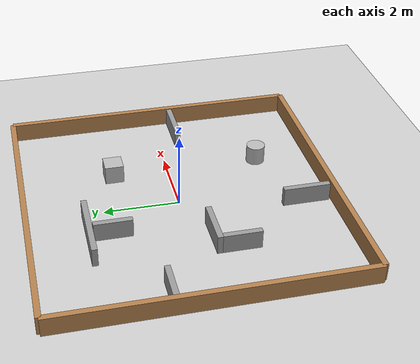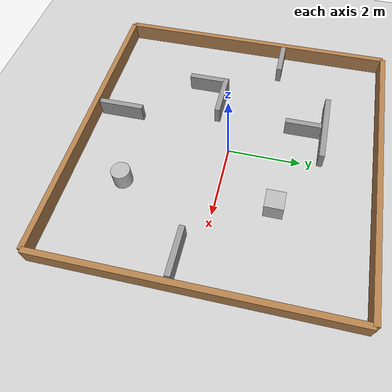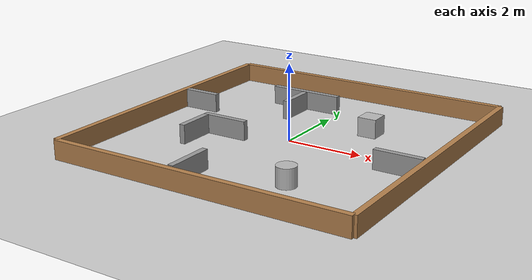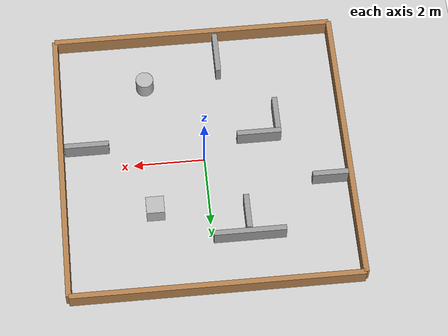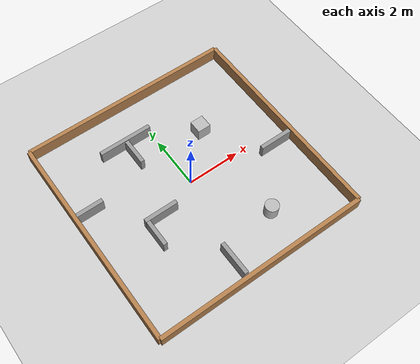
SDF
<?xml version='1.0'?>
<sdf version='1.6'>
  <world name="default">
    <!-- A global light source -->
    <include>
      <uri>model://sun</uri>
    </include>

    <!-- Ground plane -->
    <include>
      <uri>model://ground_plane</uri>
    </include>

    <physics type='ode'>
      <real_time_update_rate>5000.0</real_time_update_rate>
      <max_step_size>0.001</max_step_size>
      <real_time_factor>1</real_time_factor>
      <ode>
        <solver>
          <type>quick</type>
          <iters>150</iters>
          <precon_iters>0</precon_iters>
          <sor>1.4</sor>
          <use_dynamic_moi_rescaling>1</use_dynamic_moi_rescaling>
        </solver>
        <constraints>
          <cfm>1e-05</cfm>
          <erp>0.2</erp>
          <contact_max_correcting_vel>2000</contact_max_correcting_vel>
          <contact_surface_layer>0.01</contact_surface_layer>
        </constraints>
      </ode>
    </physics>

    <!-- Rectangle Walls: Wall 1-4 -->
    <model name='rect_wall'>
      <pose frame=''>0 0 0 0 -0 0</pose>
      <link name='Wall_1'>
        <collision name='Wall_0_Collision'>
          <geometry>
            <box>
              <size>8 0.15 0.5</size>
            </box>
          </geometry>
          <pose frame=''>0 0 0.25 0 -0 0</pose>
        </collision>
        <visual name='Wall_0_Visual'>
          <pose frame=''>0 0 0.25 0 -0 0</pose>
          <geometry>
            <box>
              <size>8 0.15 0.5</size>
            </box>
          </geometry>
          <material>
            <script>
              <uri>file://media/materials/scripts/gazebo.material</uri>
              <name>Gazebo/Wood</name>
            </script>
            <ambient>1 1 1 1</ambient>
          </material>
        </visual>
        <pose frame=''>0 4.0 0 0 -0 0</pose>
      </link>
      <link name='Wall_2'>
        <collision name='Wall_2_Collision'>
          <geometry>
            <box>
              <size>8 0.15 0.5</size>
            </box>
          </geometry>
          <pose frame=''>0 0 0.25 0 -0 0</pose>
        </collision>
        <visual name='Wall_2_Visual'>
          <pose frame=''>0 0 0.25 0 -0 0</pose>
          <geometry>
            <box>
              <size>8 0.15 0.5</size>
            </box>
          </geometry>
          <material>
            <script>
              <uri>file://media/materials/scripts/gazebo.material</uri>
              <name>Gazebo/Wood</name>
            </script>
            <ambient>1 1 1 1</ambient>
          </material>
        </visual>
        <pose frame=''>-4.0 0 0 0 0 -1.5708</pose>
      </link>
      <link name='Wall_3'>
        <collision name='Wall_3_Collision'>
          <geometry>
            <box>
              <size>8 0.15 0.5</size>
            </box>
          </geometry>
          <pose frame=''>0 0 0.25 0 -0 0</pose>
        </collision>
        <visual name='Wall_3_Visual'>
          <pose frame=''>0 0 0.25 0 -0 0</pose>
          <geometry>
            <box>
              <size>8 0.15 0.5</size>
            </box>
          </geometry>
          <material>
            <script>
              <uri>file://media/materials/scripts/gazebo.material</uri>
              <name>Gazebo/Wood</name>
            </script>
            <ambient>1 1 1 1</ambient>
          </material>
        </visual>
        <pose frame=''>0 -4.0 0 0 -0 0</pose>
      </link>
      <link name='Wall_4'>
        <collision name='Wall_4_Collision'>
          <geometry>
            <box>
              <size>8 0.15 0.5</size>
            </box>
          </geometry>
          <pose frame=''>0 0 0.25 0 -0 0</pose>
        </collision>
        <visual name='Wall_4_Visual'>
          <pose frame=''>0 0 0.25 0 -0 0</pose>
          <geometry>
            <box>
              <size>8 0.15 0.5</size>
            </box>
          </geometry>
          <material>
            <script>
              <uri>file://media/materials/scripts/gazebo.material</uri>
              <name>Gazebo/Wood</name>
            </script>
            <ambient>1 1 1 1</ambient>
          </material>
        </visual>
        <pose frame=''>4.0 0 0 0 -0 1.5708</pose>
      </link>
      <static>1</static>
    </model>

    <!-- Maze walls: maze 1-7 -->
    <model name='Test2'>
      <pose>-0.13 -0.5 0 0 -0 0</pose>

      <link name='Maze_1'>
        <collision name='Maze_1_Collision'>
          <geometry>
            <box>
              <size>2 0.15 0.5</size>
            </box>
          </geometry>
          <pose>0 0 0.25 0 -0 0</pose>
        </collision>
        <visual name='Maze_1_Visual'>
          <pose>0 0 0.25 0 -0 0</pose>
          <geometry>
            <box>
              <size>2 0.15 0.5</size>
            </box>
          </geometry>
          <material>
            <script>
              <uri>file://media/materials/scripts/gazebo.material</uri>
              <name>Gazebo/Grey</name>
            </script>
            <ambient>1 1 1 1</ambient>
          </material>
          <meta>
            <layer>0</layer>
          </meta>
        </visual>
        <pose>-0.895 3 0 0 -0 0</pose>
      </link>
      <link name='Maze_2'>
        <collision name='Maze_2_Collision'>
          <geometry>
            <box>
              <size>1 0.15 0.5</size>
            </box>
          </geometry>
          <pose>0 0 0.25 0 -0 0</pose>
        </collision>
        <visual name='Maze_2_Visual'>
          <pose>0 0 0.25 0 -0 0</pose>
          <geometry>
            <box>
              <size>1 0.15 0.5</size>
            </box>
          </geometry>
          <material>
            <script>
              <uri>file://media/materials/scripts/gazebo.material</uri>
              <name>Gazebo/Grey</name>
            </script>
            <ambient>1 1 1 1</ambient>
          </material>
          <meta>
            <layer>0</layer>
          </meta>
        </visual>
        <pose>-0.89 2.405 0 0 -0 -1.5708</pose>
      </link>
      <link name='Maze_3'>
        <collision name='Maze_3_Collision'>
          <geometry>
            <box>
              <size>1 0.15 0.5</size>
            </box>
          </geometry>
          <pose>0 0 0.25 0 -0 0</pose>
        </collision>
        <visual name='Maze_3_Visual'>
          <pose>0 0 0.25 0 -0 0</pose>
          <geometry>
            <box>
              <size>1 0.15 0.5</size>
            </box>
          </geometry>
          <material>
            <script>
              <uri>file://media/materials/scripts/gazebo.material</uri>
              <name>Gazebo/Grey</name>
            </script>
            <ambient>1 1 1 1</ambient>
          </material>
          <meta>
            <layer>0</layer>
          </meta>
        </visual>
        <pose>-3.30 1.44 0 0 -0 0</pose>
      </link>
      <link name='Maze_4'>
        <collision name='Maze_4_Collision'>
          <geometry>
            <box>
              <size>1.25 0.15 0.5</size>
            </box>
          </geometry>
          <pose>0 0 0.25 0 -0 0</pose>
        </collision>
        <visual name='Maze_4_Visual'>
          <pose>0 0 0.25 0 -0 0</pose>
          <geometry>
            <box>
              <size>1.25 0.15 0.5</size>
            </box>
          </geometry>
          <material>
            <script>
              <uri>file://media/materials/scripts/gazebo.material</uri>
              <name>Gazebo/Grey</name>
            </script>
            <ambient>1 1 1 1</ambient>
          </material>
          <meta>
            <layer>0</layer>
          </meta>
        </visual>
        <pose>-1.46 -0.03 0 0 -0 0</pose>
      </link>
      <link name='Maze_5'>
        <collision name='Maze_5_Collision'>
          <geometry>
            <box>
              <size>1 0.15 0.5</size>
            </box>
          </geometry>
          <pose>0 0 0.25 0 -0 0</pose>
        </collision>
        <visual name='Maze_5_Visual'>
          <pose>0 0 0.25 0 -0 0</pose>
          <geometry>
            <box>
              <size>1 0.15 0.5</size>
            </box>
          </geometry>
          <material>
            <script>
              <uri>file://media/materials/scripts/gazebo.material</uri>
              <name>Gazebo/Grey</name>
            </script>
            <ambient>1 1 1 1</ambient>
          </material>
          <meta>
            <layer>0</layer>
          </meta>
        </visual>
        <pose>-2.01 -0.595 0 0 -0 1.5708</pose>
      </link>
      <link name='Maze_6'>
        <collision name='Maze_6_Collision'>
          <geometry>
            <box>
              <size>1.25 0.15 0.5</size>
            </box>
          </geometry>
          <pose>0 0 0.25 0 -0 0</pose>
        </collision>
        <visual name='Maze_6_Visual'>
          <pose>0 0 0.25 0 -0 0</pose>
          <geometry>
            <box>
              <size>1.25 0.15 0.5</size>
            </box>
          </geometry>
          <material>
            <script>
              <uri>file://media/materials/scripts/gazebo.material</uri>
              <name>Gazebo/Grey</name>
            </script>
            <ambient>1 1 1 1</ambient>
          </material>
          <meta>
            <layer>0</layer>
          </meta>
        </visual>
        <pose>-0.51 -2.75 0 0 -0 1.5708</pose>
      </link>
      <link name='Maze_7'>
        <collision name='Maze_7_Collision'>
          <geometry>
            <box>
              <size>1.25 0.15 0.5</size>
            </box>
          </geometry>
          <pose>0 0 0.25 0 -0 0</pose>
        </collision>
        <visual name='Maze_7_Visual'>
          <pose>0 0 0.25 0 -0 0</pose>
          <geometry>
            <box>
              <size>1.25 0.15 0.5</size>
            </box>
          </geometry>
          <material>
            <script>
              <uri>file://media/materials/scripts/gazebo.material</uri>
              <name>Gazebo/Grey</name>
            </script>
            <ambient>1 1 1 1</ambient>
          </material>
          <meta>
            <layer>0</layer>
          </meta>
        </visual>
        <pose>3.4 -0.04 0 0 -0 0</pose>
      </link>
      <static>1</static>
    </model>
    <!-- Maze pillar: maze 8-10 -->
    <model name="other_maze">
      <pose>0 0 0.25 0 0 0</pose>
      <static>true</static>
      <link name="Maze_8">
        <pose>1.5 1.5 0 0 0 0</pose>
        <collision name="Maze_8_Collision">
          <geometry>
            <box>
              <size>0.5 0.5 0.5</size>
            </box>
          </geometry>
        </collision>
        <visual name="visual">
          <geometry>
            <box>
              <size>0.5 0.5 0.5</size>
            </box>
          </geometry>
        </visual>
      </link>
      <link name="Maze_9">
        <pose>1.5 -2.5 0 0 0 0</pose>
        <collision name="Maze_10_Collision">
          <geometry>
            <cylinder>
              <radius>0.25</radius>
              <length>0.5</length>
            </cylinder>
          </geometry>
        </collision>
        <visual name="visual">
          <geometry>
            <cylinder>
              <radius>0.25</radius>
              <length>0.5</length>
            </cylinder>
          </geometry>
        </visual>
      </link>
    </model>
  </world>
</sdf>
